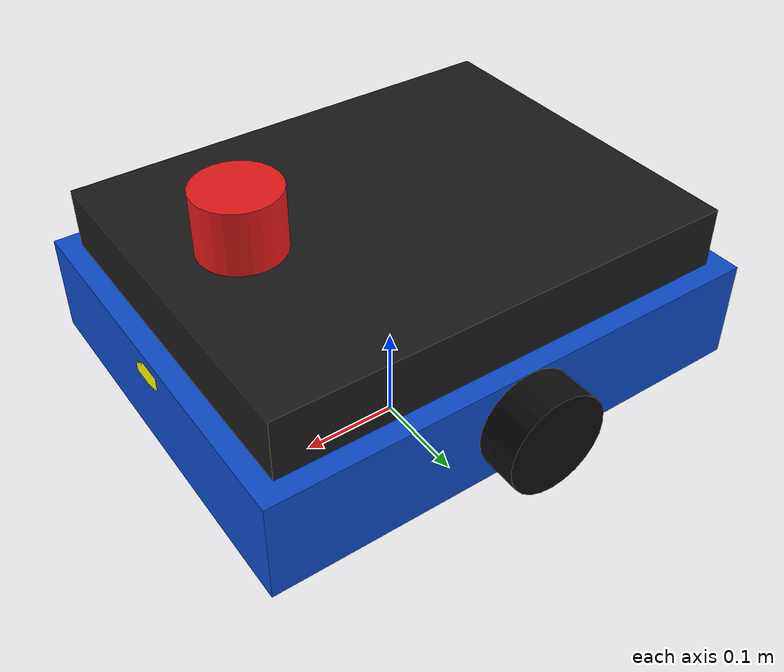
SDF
<?xml version="1.0"?>
<sdf version="1.8">
  <model name="amr_viz">
    <static>false</static>
    <pose>0 0 0.10 0 0 0</pose>

    <link name="base_link">
      <inertial>
        <mass>10.0</mass>
        <inertia>
          <ixx>0.1</ixx><iyy>0.1</iyy><izz>0.1</izz>
          <ixy>0</ixy><ixz>0</ixz><iyz>0</iyz>
        </inertia>
      </inertial>

      <visual name="chassis">
        <pose>0 0 0.05 0 0 0</pose>
        <geometry><box><size>0.50 0.40 0.10</size></box></geometry>
        <material>
          <ambient>0.05 0.30 0.80 1</ambient>
          <diffuse>0.05 0.30 0.80 1</diffuse>
        </material>
      </visual>

      <visual name="lid">
        <pose>0 0 0.13 0 0 0</pose>
        <geometry><box><size>0.46 0.36 0.06</size></box></geometry>
        <material>
          <ambient>0.10 0.10 0.10 1</ambient>
          <diffuse>0.10 0.10 0.10 1</diffuse>
        </material>
      </visual>

      <visual name="lidar_dome">
        <pose>0.15 0 0.20 0 0 0</pose>
        <geometry><cylinder><radius>0.04</radius><length>0.06</length></cylinder></geometry>
        <material>
          <ambient>0.90 0.10 0.10 1</ambient>
          <diffuse>0.90 0.10 0.10 1</diffuse>
          <emissive>0.20 0.00 0.00 1</emissive>
        </material>
      </visual>

      <visual name="front_arrow">
        <pose>0.22 0 0.08 0 0 0</pose>
        <geometry><box><size>0.06 0.04 0.02</size></box></geometry>
        <material>
          <ambient>1.0 1.0 0.0 1</ambient>
          <diffuse>1.0 1.0 0.0 1</diffuse>
          <emissive>0.5 0.5 0.0 1</emissive>
        </material>
      </visual>

      <visual name="wheel_left">
        <pose>0 0.22 0.05 1.5708 0 0</pose>
        <geometry><cylinder><radius>0.05</radius><length>0.04</length></cylinder></geometry>
        <material>
          <ambient>0.05 0.05 0.05 1</ambient>
          <diffuse>0.05 0.05 0.05 1</diffuse>
        </material>
      </visual>

      <visual name="wheel_right">
        <pose>0 -0.22 0.05 1.5708 0 0</pose>
        <geometry><cylinder><radius>0.05</radius><length>0.04</length></cylinder></geometry>
        <material>
          <ambient>0.05 0.05 0.05 1</ambient>
          <diffuse>0.05 0.05 0.05 1</diffuse>
        </material>
      </visual>

      <gravity>false</gravity>
      <enable_wind>false</enable_wind>
    </link>
  </model>
</sdf>
